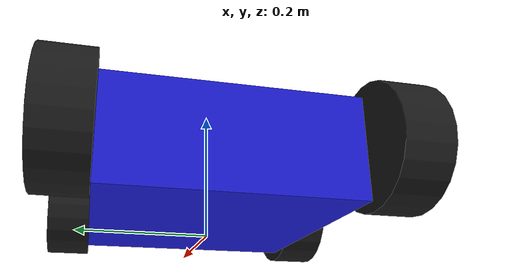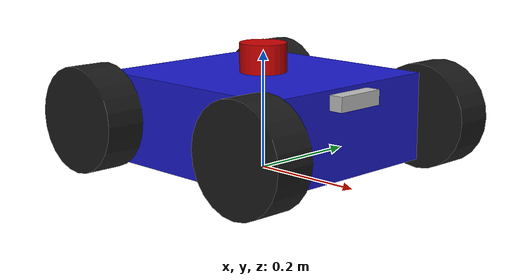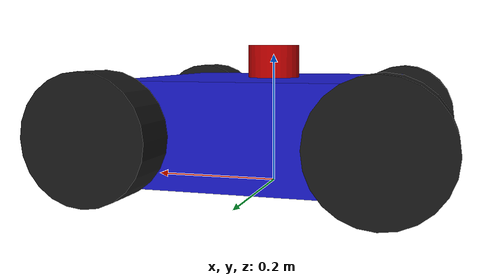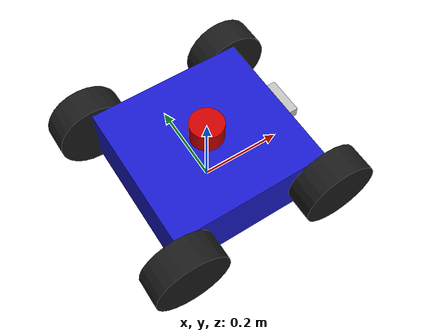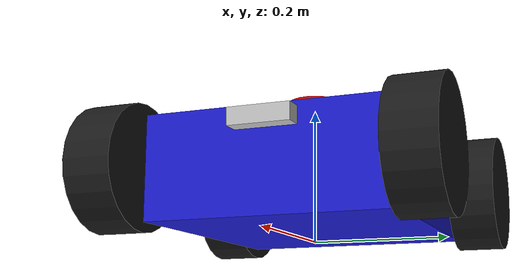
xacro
<?xml version="1.0"?>
<robot name="rover" xmlns:xacro="http://www.ros.org/wiki/xacro">

    <xacro:property name="chassis_length" value="0.38"/>
    <xacro:property name="chassis_width" value="0.36"/>
    <xacro:property name="chassis_height" value="0.15"/>
    <xacro:property name="chassis_mass" value="15.0"/>

    <xacro:property name="wheel_radius" value="0.09"/>
    <xacro:property name="wheel_width" value="0.07"/>
    <xacro:property name="wheel_mass" value="2.0"/>

    <!-- DÜZELTİLDİ: Atalet formülleri x, y ve z parametreleri ile doğru matrise oturtuldu -->
    <xacro:macro name="box_inertia" params="m x y z">
        <inertial>
            <mass value="${m}"/>
            <inertia ixx="${(m/12) * (y*y + z*z)}" ixy="0.0" ixz="0.0"
                     iyy="${(m/12) * (x*x + z*z)}" iyz="0.0"
                     izz="${(m/12) * (x*x + y*y)}"/>
        </inertial>
    </xacro:macro>

    <xacro:macro name="cylinder_inertia" params="m r h">
        <inertial>
            <mass value="${m}"/>
            <inertia ixx="${(m/12) * (3*r*r + h*h)}" ixy="0" ixz="0"
                     iyy="${(m/12) * (3*r*r + h*h)}" iyz="0"
                     izz="${(m/2) * (r*r)}"/>
        </inertial>
    </xacro:macro>

    <!-- EKLENDİ: Simülasyonda yerin dibine girmeyi engelleyen ana referans noktası -->
    <link name="base_footprint"/>

    <joint name="base_joint" type="fixed">
        <parent link="base_footprint"/>
        <child link="base_link"/>
        <!-- Robotu tekerlek yarıçapı (0.09) kadar yukarı kaldırır, tekerlekler tam yere basar -->
        <origin xyz="0 0 ${wheel_radius}" rpy="0 0 0"/>
    </joint>

    <link name="base_link">
        <visual>
            <geometry>
                <box size="${chassis_length} ${chassis_width} ${chassis_height}"/>
            </geometry>
            <material name="blue">
                <color rgba="0.1 0.1 0.8 1"/>
            </material>
        </visual>
        <collision>
            <geometry>
                <box size="${chassis_length} ${chassis_width} ${chassis_height}"/>
            </geometry>
        </collision>
        <xacro:box_inertia m="${chassis_mass}" x="${chassis_length}" y="${chassis_width}" z="${chassis_height}"/>
    </link>

    <!-- EKLENDİ: EKF Filtresinin çökmemesi için gerekli IMU TF Linki -->
    <link name="imu_link">
        <visual>
            <geometry>
                <box size="0.02 0.02 0.01"/>
            </geometry>
            <material name="yellow">
                <color rgba="1.0 1.0 0.0 1.0"/>
            </material>
        </visual>
        <xacro:box_inertia m="0.05" x="0.02" y="0.02" z="0.01"/>
    </link>

    <joint name="imu_joint" type="fixed">
        <parent link="base_link"/>
        <child link="imu_link"/>
        <!-- Şasinin tam merkezine oturtuldu -->
        <origin xyz="0 0 0" rpy="0 0 0"/>
    </joint>
    <gazebo reference="imu_link">
        <gravity>true</gravity>
        <sensor name="imu_sensor" type="imu">
            <always_on>true</always_on>
            <update_rate>100</update_rate>
            <visualize>true</visualize>
            <topic>__default_topic__</topic>
            <plugin filename="libgazebo_ros_imu_sensor.so" name="imu_plugin">
                <topicName>imu/data</topicName>
                <bodyName>imu_link</bodyName>
                <updateRateHZ>100.0</updateRateHZ>
                <gaussianNoise>0.001</gaussianNoise>
                <xyzOffset>0 0 0</xyzOffset>
                <rpyOffset>0 0 0</rpyOffset>
                <frameName>imu_link</frameName>
                <ros>
                    <remapping>~/out:=imu/data</remapping>
                </ros>
            </plugin>
        </sensor>
    </gazebo>

    <xacro:macro name="wheel" params="prefix x_reflect y_reflect">
        <link name="${prefix}_wheel">
            <!-- DÜZELTİLDİ: Visual ve Collision'dan RPY rotasyonları kaldırıldı. Silindir artık doğal Z ekseninde -->
            <visual>
                <origin xyz="0 0 0" rpy="0 0 0"/>
                <geometry>
                    <cylinder radius="${wheel_radius}" length="${wheel_width}"/>
                </geometry>
                <material name="black">
                    <color rgba="0.1 0.1 0.1 1"/>
                </material>
            </visual>
            <collision>
                <origin xyz="0 0 0" rpy="0 0 0"/>
                <geometry>
                    <cylinder radius="${wheel_radius}" length="${wheel_width}"/>
                </geometry>
            </collision>
            <!-- Atalet artık şekille %100 eşleşiyor -->
            <xacro:cylinder_inertia m="${wheel_mass}" r="${wheel_radius}" h="${wheel_width}"/>
        </link>

        <joint name="${prefix}_wheel_joint" type="continuous">
            <parent link="base_link"/>
            <child link="${prefix}_wheel"/>
            <!-- DÜZELTİLDİ: Joint'in kendisi X ekseni etrafında 90 derece (-pi/2) döndürüldü. -->
            <origin xyz="${x_reflect * (chassis_length/2)} ${y_reflect * (chassis_width/2 + wheel_width/2)} 0" rpy="${-pi/2} 0 0"/>
            <!-- Artık tekerlek kendi doğal Z ekseninde döner (Robotun Y eksenine denk gelir) -->
            <axis xyz="0 0 1"/>
            <dynamics damping="2.0" friction="1.5"/>
        </joint>

        <gazebo reference="${prefix}_wheel">
            <material>Gazebo/DarkGrey</material>
            <mu1>1.0</mu1>
            <mu2>1.0</mu2>
            <kp>1000000.0</kp>
            <kd>100.0</kd>
            <minDepth>0.001</minDepth>
        </gazebo>
    </xacro:macro>

    <xacro:wheel prefix="front_left"  x_reflect="1"  y_reflect="1"  />
    <xacro:wheel prefix="front_right" x_reflect="1"  y_reflect="-1" />
    <xacro:wheel prefix="rear_left"   x_reflect="-1" y_reflect="1"  />
    <xacro:wheel prefix="rear_right"  x_reflect="-1" y_reflect="-1" />

    <link name="laser">
        <visual>
            <geometry>
                <cylinder radius="0.04" length="0.05"/>
            </geometry>
            <material name="red">
                <color rgba="0.8 0 0 1"/>
            </material>
        </visual>
        <xacro:cylinder_inertia m="0.2" r="0.04" h="0.05"/>
    </link>

    <joint name="lidar_joint" type="fixed">
        <parent link="base_link"/>
        <child link="laser"/>
        <origin xyz="0 0 ${chassis_height/2 + 0.025}" rpy="0 0 0"/>
    </joint>

    <link name="camera_link">
        <visual>
            <geometry>
                <box size="0.025 0.090 0.025"/>
            </geometry>
            <material name="silver">
                <color rgba="0.75 0.75 0.75 1"/>
            </material>
        </visual>
        <xacro:box_inertia m="0.1" x="0.025" y="0.090" z="0.025"/>
    </link>

    <joint name="camera_joint" type="fixed">
        <parent link="base_link"/>
        <child link="camera_link"/>
        <origin xyz="${chassis_length/2 + 0.0125} 0 ${chassis_height/2 - 0.02}" rpy="0 0 0"/>
    </joint>

    <link name="camera_link_optical"/>
    <joint name="camera_optical_joint" type="fixed">
        <parent link="camera_link"/>
        <child link="camera_link_optical"/>
        <origin xyz="0 0 0" rpy="${-pi/2} 0 ${-pi/2}"/>
    </joint>

    <gazebo reference="base_link">
        <material>Gazebo/Blue</material>
    </gazebo>

    <gazebo reference="laser">
        <material>Gazebo/Red</material>
    </gazebo>

    <gazebo>
        <plugin name="diff_drive" filename="libgazebo_ros_diff_drive.so">
            <ros>
                <namespace>/</namespace>
            </ros>
            <num_wheel_pairs>2</num_wheel_pairs>
            <left_joint>front_left_wheel_joint</left_joint>
            <left_joint>rear_left_wheel_joint</left_joint>
            <right_joint>front_right_wheel_joint</right_joint>
            <right_joint>rear_right_wheel_joint</right_joint>
            <wheel_separation>${chassis_width + wheel_width}</wheel_separation>
            <wheel_diameter>${2 * wheel_radius}</wheel_diameter>
            <max_wheel_torque>500</max_wheel_torque>
            <max_wheel_acceleration>2.0</max_wheel_acceleration>
            <command_timeout>0.1</command_timeout>
            <publish_odom>true</publish_odom>
            <publish_odom_tf>false</publish_odom_tf>
            <publish_wheel_tf>true</publish_wheel_tf>
            <odometry_frame>odom</odometry_frame>
            <!-- DÜZELTİLDİ: Ana robot frame'i base_footprint yapıldı -->
            <robot_base_frame>base_footprint</robot_base_frame>
        </plugin>
    </gazebo>

    <gazebo reference="laser">
        <sensor name="rplidar" type="ray">
            <pose>0 0 0 0 0 0</pose>
            <visualize>true</visualize>
            <update_rate>10.0</update_rate>
            <ray>
                <scan>
                    <horizontal>
                        <samples>360</samples>
                        <resolution>1</resolution>
                        <min_angle>-3.14159</min_angle>
                        <max_angle>3.14159</max_angle>
                    </horizontal>
                </scan>
                <range>
                    <min>0.15</min>
                    <max>12.0</max>
                    <resolution>0.01</resolution>
                </range>
                <noise>
                    <type>gaussian</type>
                    <mean>0.0</mean>
                    <stddev>0.01</stddev>
                </noise>
            </ray>
            <plugin name="laser_controller" filename="libgazebo_ros_ray_sensor.so">
                <ros>
                    <remapping>~/out:=scan</remapping>
                </ros>
                <output_type>sensor_msgs/LaserScan</output_type>
                <frame_name>laser</frame_name>
            </plugin>
        </sensor>
    </gazebo>

    <gazebo reference="camera_link">
        <sensor name="realsense_d435" type="camera">
            <update_rate>30.0</update_rate>
            <camera name="head">
                <horizontal_fov>1.50098</horizontal_fov>
                <image>
                    <width>1920</width>
                    <height>1080</height>
                    <format>R8G8B8</format>
                </image>
                <clip>
                    <near>0.02</near>
                    <far>300</far>
                </clip>
                <noise>
                    <type>gaussian</type>
                    <mean>0.0</mean>
                    <stddev>0.007</stddev>
                </noise>
            </camera>
            <plugin name="camera_controller" filename="libgazebo_ros_camera.so">
                <ros>
                    <remapping>~/image_raw:=image_raw</remapping>
                    <remapping>~/camera_info:=camera_info</remapping>
                </ros>
                <camera_name>camera</camera_name>
                <frame_name>camera_link_optical</frame_name>
            </plugin>
        </sensor>
    </gazebo>

</robot>
